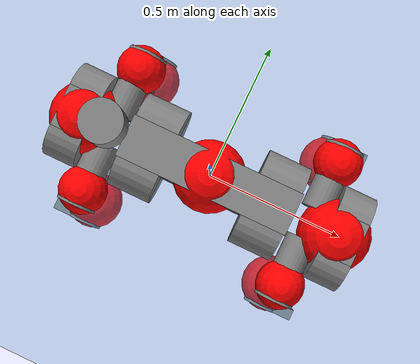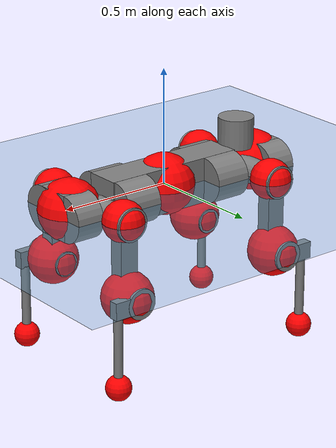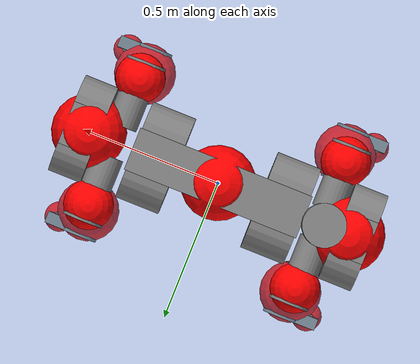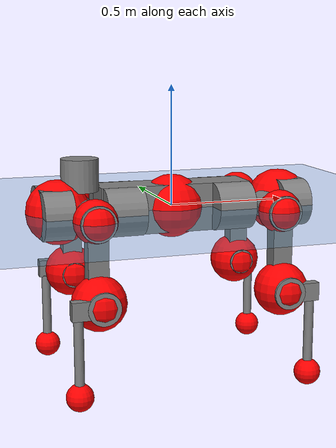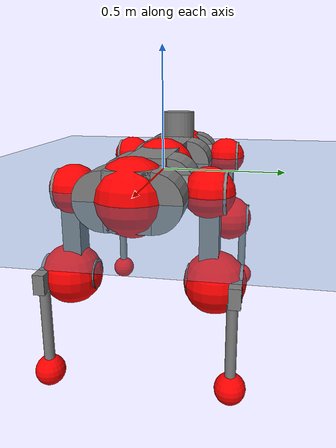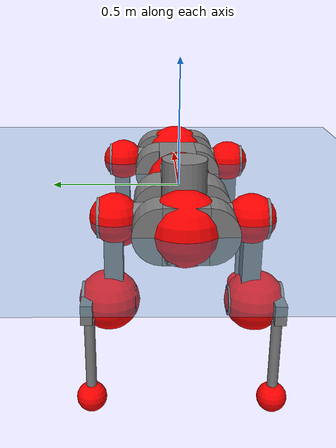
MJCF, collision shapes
<mujoco model="anymal_c">
  <compiler angle="radian" assetdir="assets" balanceinertia="true" inertiafromgeom="false"/>

  <option timestep="0.005" density="1.2" viscosity="2e-05"/>

  <size nkey="1"/>

  <visual>
    <quality shadowsize="8192"/>
    <map shadowclip="0.5"/>
  </visual>

  <default>
    <default class="/">
      <material specular="0" shininess="0.25"/>
      <geom contype="0" conaffinity="0" group="1" solref="-1000 -80"/>
      <site size="0.01 0.005 0.005" group="5"/>
      <general forcelimited="true" forcerange="-80 80" biastype="affine" gainprm="80" biasprm="0 -80 -2"/>
      <default class="anymal_c">
        <joint armature="0.01" damping="0.01" frictionloss="0.1"/>
        <default class="visual">
          <geom type="mesh" group="2"/>
          <default class="visual_zflip"/>
        </default>
        <default class="collision">
          <geom type="cylinder" group="3"/>
          <default class="foot">
            <geom size="0.03 0 0" type="sphere" condim="6" priority="1" friction="0.8 0.02 0.01" solimp="0.015 1 0.03"/>
          </default>
        </default>
      </default>
      <default class="reward_collision_sphere">
        <geom group="5" rgba="1 0 0 1"/>
      </default>
    </default>
  </default>

  <asset>
    <texture type="skybox" colorspace="auto" name="//unnamed_texture_0" builtin="gradient" rgb1="0.95 0.95 0.95" rgb2="0.95 0.95 0.95" width="100" height="600"/>
    <texture type="2d" colorspace="auto" name="texplane" builtin="checker" rgb1="0.345 0.575 0.748" rgb2="0.345 0.575 0.748" markrgb="1 1 1" width="512" height="512"/>
    <texture type="2d" colorspace="linear" name="base" file="base.png"/>
    <texture type="2d" colorspace="linear" name="top_shell" file="top_shell.png"/>
    <texture type="2d" colorspace="linear" name="bottom_shell" file="bottom_shell.png"/>
    <texture type="2d" colorspace="linear" name="remote" file="remote.png"/>
    <texture type="2d" colorspace="linear" name="hatch" file="hatch.png"/>
    <texture type="2d" colorspace="linear" name="handle" file="handle.png"/>
    <texture type="2d" colorspace="linear" name="face" file="face.png"/>
    <texture type="2d" colorspace="linear" name="battery" file="battery.png"/>
    <texture type="2d" colorspace="linear" name="lidar_cage" file="lidar_cage.png"/>
    <texture type="2d" colorspace="linear" name="depth_camera" file="depth_camera.png"/>
    <texture type="2d" colorspace="linear" name="wide_angle_camera" file="wide_angle_camera.png"/>
    <texture type="2d" colorspace="linear" name="lidar" file="lidar.png"/>
    <texture type="2d" colorspace="linear" name="drive" file="drive.png"/>
    <texture type="2d" colorspace="linear" name="hip_l" file="hip_l.png"/>
    <texture type="2d" colorspace="linear" name="shank_l" file="shank_l.png"/>
    <texture type="2d" colorspace="linear" name="foot" file="foot.png"/>
    <texture type="2d" colorspace="linear" name="thigh" file="thigh.png"/>
    <texture type="2d" colorspace="linear" name="shank_r" file="shank_r.png"/>
    <texture type="2d" colorspace="linear" name="hip_r" file="hip_r.png"/>
    <material name="MatPlane" class="/" texture="texplane" texuniform="true" texrepeat="2 2" specular="0.9" shininess="0.5"/>
    <material name="black_plastic" class="/" rgba="0.007 0.007 0.007 1"/>
    <material name="green" class="/" rgba="0.052 0.178 0.033 1"/>
    <material name="red" class="/" rgba="0.178 0.006 0.005 1"/>
    <material name="yellow" class="/" rgba="0.178 0.119 0.006 1"/>
    <material name="lwl" class="/" rgba="0.8 0.8 0.8 1"/>
    <material name="base" class="/" texture="base"/>
    <material name="top_shell" class="/" texture="top_shell"/>
    <material name="bottom_shell" class="/" texture="bottom_shell"/>
    <material name="hip_l" class="/" texture="hip_l"/>
    <material name="thigh" class="/" texture="thigh"/>
    <material name="shank_l" class="/" texture="shank_l"/>
    <material name="foot" class="/" texture="foot"/>
    <material name="hip_r" class="/" texture="hip_r"/>
    <material name="shank" class="/" texture="shank_r"/>
    <material name="hatch" class="/" texture="hatch"/>
    <material name="remote" class="/" texture="remote"/>
    <material name="handle" class="/" texture="handle"/>
    <material name="face" class="/" texture="face"/>
    <material name="depth_camera" class="/" texture="depth_camera"/>
    <material name="wide_angle_camera" class="/" texture="wide_angle_camera"/>
    <material name="battery" class="/" texture="battery"/>
    <material name="lidar_cage" class="/" texture="lidar_cage"/>
    <material name="lidar" class="/" texture="lidar"/>
    <material name="drive" class="/" texture="drive"/>
    <mesh name="base_0" class="/" file="base_0.obj"/>
    <mesh name="base_1" class="/" file="base_1.obj"/>
    <mesh name="base_2" class="/" file="base_2.obj"/>
    <mesh name="base_3" class="/" file="base_3.obj"/>
    <mesh name="base_4" class="/" file="base_4.obj"/>
    <mesh name="base_5" class="/" file="base_5.obj"/>
    <mesh name="top_shell" class="/" file="top_shell.obj"/>
    <mesh name="bottom_shell" class="/" file="bottom_shell.obj"/>
    <mesh name="remote" class="/" file="remote.obj"/>
    <mesh name="handle" class="/" file="handle.obj"/>
    <mesh name="face" class="/" file="face.obj"/>
    <mesh name="wide_angle_camera" class="/" file="wide_angle_camera.obj"/>
    <mesh name="depth_camera" class="/" file="depth_camera.obj"/>
    <mesh name="battery" class="/" file="battery.obj"/>
    <mesh name="lidar_cage" class="/" file="lidar_cage.obj"/>
    <mesh name="lidar" class="/" file="lidar.obj"/>
    <mesh name="drive" class="/" file="drive.obj"/>
    <mesh name="hip_l" class="/" file="hip_l.obj"/>
    <mesh name="thigh" class="/" file="thigh.obj"/>
    <mesh name="shank_l" class="/" file="shank_l.obj"/>
    <mesh name="foot" class="/" file="foot.obj"/>
    <mesh name="hip_r" class="/" file="hip_r.obj"/>
    <mesh name="hatch" class="/" file="hatch.obj"/>
    <mesh name="shank_r" class="/" file="shank_r.obj"/>
  </asset>

  <worldbody>
    <geom name="floor" class="/" size="100 100 0.125" type="plane" group="0" material="MatPlane"/>
    <light name="toplight_shadow" class="/" pos="0 0 5" dir="0.0990148 0.0990148 -0.990148" type="directional" ambient="0.04 0.04 0.04" diffuse="0.55 0.55 0.55" specular="0.12 0.12 0.12"/>
    <light name="toplight_fill" class="/" pos="0 0 5" dir="0.0990148 0.0990148 -0.990148" type="directional" castshadow="false" ambient="0.04 0.04 0.04" diffuse="0.3 0.3 0.3" specular="0.08 0.08 0.08"/>
    <body name="trunk" childclass="anymal_c" pos="-0.000514927 -0.00236943 -0.000964257" quat="1 3.153e-06 -6.32407e-05 1.56965e-05">
      <inertial pos="0.0037207 -0.00206683 0.0544597" quat="0.499688 0.500515 0.50017 0.499626" mass="24.7412" diaginertia="0.872628 1.02873 0.358713"/>
      <joint name="//unnamed_joint_0" type="free" armature="0" damping="0" frictionloss="0"/>
      <geom name="//unnamed_geom_1" class="visual" material="green" mesh="base_0"/>
      <geom name="//unnamed_geom_2" class="visual" material="yellow" mesh="base_1"/>
      <geom name="//unnamed_geom_3" class="visual" material="red" mesh="base_2"/>
      <geom name="//unnamed_geom_4" class="visual" material="black_plastic" mesh="base_3"/>
      <geom name="//unnamed_geom_5" class="visual" material="lwl" mesh="base_4"/>
      <geom name="//unnamed_geom_6" class="visual" material="base" mesh="base_5"/>
      <geom name="trunk_1" class="collision" size="0.318857 0.0769654 0.0989556" type="box"/>
      <geom name="trunk_2" class="collision" size="0.0989556 0.0797142" pos="0.233317 0.0782809 0" quat="0.707107 0 0.707107 0"/>
      <geom name="trunk_3" class="collision" size="0.0989556 0.0797142" pos="-0.233317 0.0782809 0" quat="0.707107 0 0.707107 0"/>
      <geom name="trunk_4" class="collision" size="0.0989556 0.0797142" pos="0.233317 -0.0782809 0" quat="0.707107 0 0.707107 0"/>
      <geom name="trunk_5" class="collision" size="0.0989556 0.0797142" pos="-0.233317 -0.0782809 0" quat="0.707107 0 0.707107 0"/>
      <geom name="//unnamed_geom_12" class="visual" material="top_shell" mesh="top_shell"/>
      <geom name="//unnamed_geom_13" class="visual" material="bottom_shell" mesh="bottom_shell"/>
      <geom name="//unnamed_geom_14" class="visual" material="remote" mesh="remote"/>
      <geom name="//unnamed_geom_15" class="visual" material="handle" mesh="handle"/>
      <geom name="//unnamed_geom_16" class="visual" pos="0.444643 0 0" quat="1 0 0 0" material="face" mesh="face"/>
      <geom name="trunk_6" class="collision" size="0.0604728 0.0769654 0.0989556" pos="0.503643 0 0" type="box"/>
      <geom name="//unnamed_geom_18" class="collision" size="0.0989556 0.0604728" pos="0.503643 0.0782809 0" quat="0.707107 0 0.707107 0"/>
      <geom name="//unnamed_geom_19" class="collision" size="0.0989556 0.0604728" pos="0.503643 -0.0782809 0" quat="0.707107 0 0.707107 0"/>
      <geom name="//unnamed_geom_20" class="visual" pos="0.495223 0 -0.0326033" quat="0.965926 0 0.258819 0" material="depth_camera" mesh="depth_camera"/>
      <geom name="//unnamed_geom_21" class="visual" pos="0.550306 0 0.0165793" material="wide_angle_camera" mesh="wide_angle_camera"/>
      <geom name="//unnamed_geom_22" class="visual_zflip" pos="-0.444643 0 0" quat="0 0 0 1" material="face" mesh="face"/>
      <geom name="trunk_7" class="collision" size="0.0604728 0.0769654 0.0989556" pos="-0.503643 0 0" quat="0 0 0 1" type="box"/>
      <geom name="//unnamed_geom_24" class="collision" size="0.0989556 0.0604728" pos="-0.503643 -0.0782809 0" quat="0 -0.707107 0 0.707107"/>
      <geom name="//unnamed_geom_25" class="collision" size="0.0989556 0.0604728" pos="-0.503643 0.0782809 0" quat="0 -0.707107 0 0.707107"/>
      <geom name="//unnamed_geom_26" class="visual" pos="-0.495223 0 -0.0326033" quat="0 -0.258819 0 0.965926" material="depth_camera" mesh="depth_camera"/>
      <geom name="//unnamed_geom_27" class="visual_zflip" pos="-0.550306 0 0.0165793" quat="0 0 0 1" material="wide_angle_camera" mesh="wide_angle_camera"/>
      <geom name="//unnamed_geom_28" class="visual" material="battery" mesh="battery"/>
      <geom name="//unnamed_geom_29" class="visual" pos="0 0.0861046 0.0319085" quat="0.683013 -0.183013 0.183013 0.683013" material="depth_camera" mesh="depth_camera"/>
      <geom name="//unnamed_geom_30" class="visual" pos="0 -0.0861046 0.0319085" quat="0.683013 0.183013 0.183013 -0.683013" material="depth_camera" mesh="depth_camera"/>
      <geom name="//unnamed_geom_31" class="visual" pos="-0.390471 0 0.0814012" quat="1 0 0 0" material="lidar_cage" mesh="lidar_cage"/>
      <geom name="trunk_8" class="collision" size="0.0769654 0.0659704" pos="-0.390471 0 0.147851"/>
      <geom name="//unnamed_geom_33" class="visual" pos="-0.390471 1.79058e-05 0.157486" quat="0.707107 0 0 -0.707107" material="lidar" mesh="lidar"/>
      <geom name="//unnamed_geom_34" class="visual" pos="0.321709 0.116299 1.86283e-10" quat="0.258819 0.965926 0 0" material="drive" mesh="drive"/>
      <geom name="//unnamed_geom_35" class="visual" pos="0.321709 -0.116299 -1.86283e-10" quat="0.258819 -0.965926 0 0" material="drive" mesh="drive"/>
      <geom name="//unnamed_geom_36" class="visual" pos="-0.321709 0.116299 -1.86283e-10" quat="0 0 0.965926 -0.258819" material="drive" mesh="drive"/>
      <geom name="//unnamed_geom_37" class="visual" pos="-0.321709 -0.116299 1.86283e-10" quat="0 0 -0.965926 -0.258819" material="drive" mesh="drive"/>
      <geom name="//unnamed_geom_38" class="visual" pos="0.124436 0 0.0808474" quat="1 0 0 0" material="hatch" mesh="hatch"/>
      <geom name="//unnamed_geom_39" class="reward_collision_sphere" size="0.131941"/>
      <geom name="//unnamed_geom_40" class="reward_collision_sphere" size="0.131941" pos="0.482725 0 0"/>
      <geom name="//unnamed_geom_41" class="reward_collision_sphere" size="0.131941" pos="-0.482725 0 0"/>
      <site name="imu" pos="0.279293 0.0234581 0.0393798" size="0.0109951"/>
      <camera name="track" pos="0 -2.2366 0" quat="0.707107 0.707107 0 0" mode="trackcom"/>
      <camera name="ego_camera" pos="0.482725 0 -0.0443" quat="-0.5 -0.5 0.5 0.5"/>
      <body name="LF_HIP" pos="0.324842 0.116532 0.00152153" quat="0.25888 0.965909 -0.000853574 0.000683906">
        <inertial pos="0.0612714 -0.0166688 -0.00639617" quat="-0.127991 0.708026 -0.132289 0.681775" mass="3.60754" diaginertia="0.00831724 0.00834965 0.00544093"/>
        <joint name="LF_HAA" pos="0 0 0" axis="0.999998 0.00205829 -0.000473303" stiffness="0.00467808" range="-0.721966 0.542913" armature="0.0114078" damping="0" frictionloss="0.124974"/>
        <geom name="//unnamed_geom_42" class="visual" pos="0 1.09582e-05 -1.79988e-06" quat="0.258819 -0.965926 0 0" material="hip_l" mesh="hip_l"/>
        <geom name="//unnamed_geom_43" class="visual" pos="0.064256 -0.0784561 -0.0452168" quat="0.183013 -0.683013 0.683013 0.183013" material="drive" mesh="drive"/>
        <geom name="//unnamed_geom_44" class="collision" size="0.0549753 0.0769654" pos="0.064256 -0.0133746 -0.00764728" quat="-0.353553 -0.612372 0.612372 -0.353553"/>
        <body name="LF_THIGH" pos="0.0648568 -0.0811555 -0.0470659" quat="0.182299 -0.683776 0.682319 0.183465">
          <inertial pos="0.035819 0.00286964 -0.272307" quat="0.993503 0.000978532 -0.0827448 0.0781341" mass="4.08017" diaginertia="0.0420038 0.051519 0.00675729"/>
          <joint name="LF_HFE" pos="0 0 0" axis="0.999942 -0.00827831 0.0068613" range="-3.09361 3.16289" armature="0.0121656" damping="0.0120276" frictionloss="0.121986"/>
          <geom name="//unnamed_geom_45" class="visual" pos="-0.000906795 -1.4289e-06 0" quat="0.707107 0 0 -0.707107" material="thigh" mesh="thigh"/>
          <geom name="//unnamed_geom_46" class="collision" size="0.0714679 0.0439802" pos="0.0429089 0 0" quat="0.5 0.5 -0.5 -0.5"/>
          <geom name="//unnamed_geom_47" class="collision" size="0.0412315 0.0329852 0.155376" pos="0.0321816 0 -0.156505" quat="0.707107 0 0 -0.707107" type="box"/>
          <geom name="//unnamed_geom_48" class="visual" pos="0.107594 0 -0.315637" quat="1 0 0 0" material="drive" mesh="drive"/>
          <geom name="//unnamed_geom_49" class="collision" size="0.0549753 0.0769654" pos="0.0325035 0 -0.315637" quat="0.707107 0 0.707107 0"/>
          <geom name="//unnamed_geom_50" class="reward_collision_sphere" size="0.0879605" pos="0.026818 0 0"/>
          <body name="LF_SHANK" pos="0.105669 -0.00123335 -0.318333" quat="0.999999 0.00135087 -7.72311e-05 0.00051102">
            <inertial pos="0.00867025 -0.0682905 -0.0897707" quat="0.993012 -0.115427 -0.00329667 -0.0243666" mass="0.793447" diaginertia="0.0140852 0.0164413 0.00186039"/>
            <joint name="LF_KFE" pos="0 0 0" axis="0.999973 -0.00457156 0.00575571" range="-3.15106 3.14554" armature="0.00946339" damping="0.010402" frictionloss="0.109706"/>
            <geom name="//unnamed_geom_51" class="visual" pos="-0.000295686 -0.00157661 0" quat="0.707107 0 0 -0.707107" material="shank_l" mesh="shank_l"/>
            <geom name="LF_kfe_act" class="collision" size="0.0659704 0.0219901" pos="0.0214544 0 0" quat="0.5 0.5 -0.5 -0.5"/>
            <geom name="//unnamed_geom_53" class="collision" size="0.0632205 0.0371083 0.0208906" pos="0.0214544 -0.064301 0" quat="0.5 0.5 -0.5 -0.5" type="box"/>
            <geom name="//unnamed_geom_54" class="visual" pos="0.0139991 -0.0988624 -0.374301" quat="0.382683 0 0 -0.92388" material="foot" mesh="foot"/>
            <geom name="LF_calf" class="collision" size="0.0192414 0.155307" pos="0.013999 -0.0983543 -0.187151" quat="0.707107 0 0 -0.707107"/>
            <geom name="LF_foot" class="foot" size="0.0303155" pos="0.013999 -0.0983543 -0.349383" quat="0.707107 0 0 -0.707107"/>
            <geom name="//unnamed_geom_57" class="reward_collision_sphere" size="0.109951" pos="-0.0536361 0 0"/>
            <geom name="//unnamed_geom_58" class="reward_collision_sphere" size="0.0549753" pos="0.013999 -0.0983543 -0.349383"/>
            <site name="LF_foot" class="foot" pos="0.013999 -0.0983543 -0.349383" quat="0.707107 0 0 -0.707107" size="0.0109951"/>
          </body>
        </body>
      </body>
      <body name="RF_HIP" pos="0.321057 -0.118482 -0.00243742" quat="0.259011 -0.965874 0.000389586 0.000557085">
        <inertial pos="0.0589017 0.0183268 -0.00844643" quat="0.132224 0.677158 0.130942 0.711919" mass="3.57169" diaginertia="0.00805195 0.00851531 0.00556539"/>
        <joint name="RF_HAA" pos="0 0 0" axis="0.999884 -0.00672329 -0.0136889" range="-0.501635 0.726987" armature="0.0118178" damping="0.0185762" frictionloss="0.120852"/>
        <geom name="//unnamed_geom_59" class="visual" pos="0 -1.09581e-05 -1.79987e-06" quat="0.258819 0.965926 0 0" material="hip_r" mesh="hip_r"/>
        <geom name="//unnamed_geom_60" class="visual" pos="0.064256 0.0784561 -0.0452168" quat="0.183013 0.683013 0.683013 -0.183013" material="drive" mesh="drive"/>
        <geom name="//unnamed_geom_61" class="collision" size="0.0549753 0.0769654" pos="0.064256 0.0133746 -0.00764728" quat="-0.353553 0.612372 0.612372 0.353553"/>
        <body name="RF_THIGH" pos="0.065517 0.0807531 -0.04351" quat="0.182752 0.684047 0.681846 -0.183759">
          <inertial pos="0.0304484 -0.000193409 -0.270982" quat="0.993463 0.00699943 -0.0795327 0.0815869" mass="4.324" diaginertia="0.0435144 0.0536234 0.00694979"/>
          <joint name="RF_HFE" pos="0 0 0" axis="0.999977 -0.00553207 -0.00382155" range="-3.16236 3.13464" armature="0.0105585" damping="0.0169008" frictionloss="0.109209"/>
          <geom name="//unnamed_geom_62" class="visual" pos="-0.000906795 -1.4289e-06 0" quat="0.707107 0 0 -0.707107" material="thigh" mesh="thigh"/>
          <geom name="//unnamed_geom_63" class="collision" size="0.0714679 0.0439802" pos="0.0429089 0 0" quat="0.5 0.5 0.5 0.5"/>
          <geom name="//unnamed_geom_64" class="collision" size="0.0412315 0.0329852 0.155376" pos="0.0321816 0 -0.156505" quat="0.707107 0 0 0.707107" type="box"/>
          <geom name="//unnamed_geom_65" class="visual" pos="0.107594 0 -0.315637" quat="1 0 0 0" material="drive" mesh="drive"/>
          <geom name="//unnamed_geom_66" class="collision" size="0.0549753 0.0769654" pos="0.0325035 0 -0.315637" quat="0.707107 0 0.707107 0"/>
          <geom name="//unnamed_geom_67" class="reward_collision_sphere" size="0.0879605" pos="0.026818 0 0"/>
          <body name="RF_SHANK" pos="0.106331 -0.00074804 -0.31827" quat="1 -0.000171602 0.000116487 -0.000913978">
            <inertial pos="0.00836349 0.0689866 -0.0864775" quat="0.991351 0.128517 0.00500046 0.0261236" mass="0.774518" diaginertia="0.0145962 0.0162605 0.00190982"/>
            <joint name="RF_KFE" pos="0 0 0" axis="0.999992 0.00310032 -0.0023896" range="-3.12761 3.14692" armature="0.011562" damping="0.0153898" frictionloss="0.0996602"/>
            <geom name="//unnamed_geom_68" class="visual" pos="-0.000295684 0.00157661 0" quat="0.707107 0 0 0.707107" material="shank" mesh="shank_r"/>
            <geom name="RF_kfe_act" class="collision" size="0.0659704 0.0219901" pos="0.0214544 0 0" quat="0.5 0.5 0.5 0.5"/>
            <geom name="//unnamed_geom_70" class="collision" size="0.0632205 0.0371083 0.0208906" pos="0.0214544 0.064301 0" quat="0.5 0.5 0.5 0.5" type="box"/>
            <geom name="//unnamed_geom_71" class="visual" pos="0.0139989 0.0988624 -0.374301" quat="0.382683 0 0 0.92388" material="foot" mesh="foot"/>
            <geom name="RF_calf" class="collision" size="0.0192414 0.155307" pos="0.013999 0.0983543 -0.187151" quat="0.707107 0 0 0.707107"/>
            <geom name="RF_foot" class="foot" size="0.0256551" pos="0.013999 0.0983543 -0.349383" quat="0.707107 0 0 0.707107"/>
            <geom name="//unnamed_geom_74" class="reward_collision_sphere" size="0.109951" pos="-0.0536361 0 0"/>
            <geom name="//unnamed_geom_75" class="reward_collision_sphere" size="0.0549753" pos="0.013999 0.0983543 -0.349383"/>
            <site name="RF_foot" class="foot" pos="0.013999 0.0983543 -0.349383" quat="0.707107 0 0 0.707107" size="0.0109951"/>
          </body>
        </body>
      </body>
      <body name="LH_HIP" pos="-0.321222 0.116881 0.00254173" quat="0.00123964 7.53595e-05 0.965836 -0.259149">
        <inertial pos="0.0612594 0.0148967 -0.00645093" quat="0.136208 0.681698 0.133596 0.706319" mass="3.87733" diaginertia="0.00860987 0.00888179 0.0056149"/>
        <joint name="LH_HAA" pos="0 0 0" axis="0.999996 0.00222727 -0.00183114" range="-0.484181 0.676359" armature="0.0111151" damping="0.00258021" frictionloss="0.111576"/>
        <geom name="//unnamed_geom_76" class="visual" pos="0 -1.09581e-05 -1.79987e-06" quat="-0.258819 -0.965926 0 0" material="hip_r" mesh="hip_r"/>
        <geom name="//unnamed_geom_77" class="visual" pos="0.064256 0.0784561 -0.0452168" quat="0.183013 0.683013 0.683013 -0.183013" material="drive" mesh="drive"/>
        <geom name="//unnamed_geom_78" class="collision" size="0.0549753 0.0769654" pos="0.064256 0.0133746 -0.00764728" quat="-0.353553 0.612372 0.612372 0.353553"/>
        <body name="LH_THIGH" pos="0.0608849 0.0834892 -0.0463384" quat="0.18257 0.682857 0.683182 -0.183404">
          <inertial pos="0.0335576 0.000699333 -0.272856" quat="0.993236 -0.0117854 -0.0858049 0.0773378" mass="4.18899" diaginertia="0.0434673 0.0553031 0.00724242"/>
          <joint name="LH_HFE" pos="0 0 0" axis="0.999999 0.000615597 -0.00117965" stiffness="0.00300202" range="-3.1888 3.19619" armature="0.00986405" damping="0" frictionloss="0.115103"/>
          <geom name="//unnamed_geom_79" class="visual" pos="-0.000906795 -1.4289e-06 0" quat="0.707107 0 0 -0.707107" material="thigh" mesh="thigh"/>
          <geom name="//unnamed_geom_80" class="collision" size="0.0714679 0.0439802" pos="0.0429089 0 0" quat="0.5 0.5 -0.5 -0.5"/>
          <geom name="//unnamed_geom_81" class="collision" size="0.0412315 0.0329852 0.155376" pos="0.0321816 0 -0.156505" quat="0.707107 0 0 -0.707107" type="box"/>
          <geom name="//unnamed_geom_82" class="visual" pos="0.107594 0 -0.315637" quat="1 0 0 0" material="drive" mesh="drive"/>
          <geom name="//unnamed_geom_83" class="collision" size="0.0549753 0.0769654" pos="0.0325035 0 -0.315637" quat="0.707107 0 0.707107 0"/>
          <geom name="//unnamed_geom_84" class="reward_collision_sphere" size="0.0879605" pos="0.026818 0 0"/>
          <body name="LH_SHANK" pos="0.104911 0.000304623 -0.31388" quat="1 0.000277511 -0.000181686 0.000521926">
            <inertial pos="0.00686314 0.0683097 -0.0889189" quat="0.993446 0.111474 -0.0027958 0.0251326" mass="0.838182" diaginertia="0.0152702 0.0169336 0.00192728"/>
            <joint name="LH_KFE" pos="0 0 0" axis="0.999881 -0.0145323 0.00512648" stiffness="0.00146347" range="-3.13475 3.09168" armature="0.0106726" damping="0" frictionloss="0.110705"/>
            <geom name="//unnamed_geom_85" class="visual" pos="-0.000295684 0.00157661 0" quat="-0.707107 0 0 -0.707107" material="shank" mesh="shank_r"/>
            <geom name="LH_kfe_act" class="collision" size="0.0659704 0.0219901" pos="0.0214544 0 0" quat="0.5 0.5 -0.5 -0.5"/>
            <geom name="//unnamed_geom_87" class="collision" size="0.0632205 0.0371083 0.0208906" pos="0.0214544 0.064301 0" quat="0.5 0.5 -0.5 -0.5" type="box"/>
            <geom name="//unnamed_geom_88" class="visual" pos="0.0139989 0.0988624 -0.374301" quat="-0.382683 0 0 -0.92388" material="foot" mesh="foot"/>
            <geom name="LH_calf" class="collision" size="0.0192414 0.155307" pos="0.013999 0.0983543 -0.187151" quat="0.707107 0 0 -0.707107"/>
            <geom name="LH_foot" class="foot" size="0.0366977" pos="0.013999 0.0983543 -0.349383" quat="0.707107 0 0 -0.707107"/>
            <geom name="//unnamed_geom_91" class="reward_collision_sphere" size="0.109951" pos="-0.0536361 0 0"/>
            <geom name="//unnamed_geom_92" class="reward_collision_sphere" size="0.0549753" pos="0.013999 0.0983543 -0.349383"/>
            <site name="LH_foot" class="foot" pos="0.013999 0.0983543 -0.349383" quat="0.707107 0 0 -0.707107" size="0.0109951"/>
          </body>
        </body>
      </body>
      <body name="RH_HIP" pos="-0.320376 -0.116464 -0.00126956" quat="-0.000704143 0.000590242 -0.965794 -0.259307">
        <inertial pos="0.0619753 -0.0152696 -0.0121089" quat="-0.130492 0.707907 -0.132354 0.681411" mass="3.78397" diaginertia="0.00887833 0.00914669 0.00576081"/>
        <joint name="RH_HAA" pos="0 0 0" axis="0.99997 0.00673658 -0.00378857" stiffness="0.00536426" range="-0.71311 0.466496" armature="0.0111858" damping="0.00937481" frictionloss="0.105397"/>
        <geom name="//unnamed_geom_93" class="visual" pos="0 1.09582e-05 -1.79988e-06" quat="-0.258819 0.965926 0 0" material="hip_l" mesh="hip_l"/>
        <geom name="//unnamed_geom_94" class="visual" pos="0.064256 -0.0784561 -0.0452168" quat="-0.183013 0.683013 -0.683013 -0.183013" material="drive" mesh="drive"/>
        <geom name="//unnamed_geom_95" class="collision" size="0.0549753 0.0769654" pos="0.064256 -0.0133746 -0.00764728" quat="0.353553 0.612372 -0.612372 0.353553"/>
        <body name="RH_THIGH" pos="0.0631204 -0.0788242 -0.0449685" quat="-0.183616 0.683022 -0.682876 -0.182882">
          <inertial pos="0.0329969 -0.00130298 -0.269117" quat="0.993422 -0.00427705 -0.0805705 0.0812534" mass="3.8931" diaginertia="0.0409343 0.0499871 0.00671325"/>
          <joint name="RH_HFE" pos="0 0 0" axis="0.999977 0.00605391 -0.0032052" range="-3.13785 3.20136" armature="0.0115359" damping="0.00726347" frictionloss="0.110431"/>
          <geom name="//unnamed_geom_96" class="visual" pos="-0.000906795 -1.4289e-06 0" quat="0.707107 0 0 -0.707107" material="thigh" mesh="thigh"/>
          <geom name="//unnamed_geom_97" class="collision" size="0.0714679 0.0439802" pos="0.0429089 0 0" quat="0.5 0.5 0.5 0.5"/>
          <geom name="//unnamed_geom_98" class="collision" size="0.0412315 0.0329852 0.155376" pos="0.0321816 0 -0.156505" quat="0.707107 0 0 0.707107" type="box"/>
          <geom name="//unnamed_geom_99" class="visual" pos="0.107594 0 -0.315637" quat="1 0 0 0" material="drive" mesh="drive"/>
          <geom name="//unnamed_geom_100" class="collision" size="0.0549753 0.0769654" pos="0.0325035 0 -0.315637" quat="0.707107 0 0.707107 0"/>
          <geom name="//unnamed_geom_101" class="reward_collision_sphere" size="0.0879605" pos="0.026818 0 0"/>
          <body name="RH_SHANK" pos="0.108396 0.000990501 -0.315386" quat="0.999999 -0.000976748 -0.000920031 -0.000346252">
            <inertial pos="0.00575656 -0.0686519 -0.0908307" quat="0.992668 -0.117631 0.00993304 -0.0259784" mass="0.793077" diaginertia="0.0146924 0.0158757 0.00187677"/>
            <joint name="RH_KFE" pos="0 0 0" axis="0.999985 -0.00533723 0.0011017" range="-3.17378 3.15939" armature="0.0101906" damping="0.00793841" frictionloss="0.110931"/>
            <geom name="//unnamed_geom_102" class="visual" pos="-0.000295686 -0.00157661 0" quat="0.707107 0 0 -0.707107" material="shank_l" mesh="shank_l"/>
            <geom name="RH_kfe_act" class="collision" size="0.0659704 0.0219901" pos="0.0214544 0 0" quat="0.5 0.5 0.5 0.5"/>
            <geom name="//unnamed_geom_104" class="collision" size="0.0632205 0.0371083 0.0208906" pos="0.0214544 -0.064301 0" quat="0.5 0.5 0.5 0.5" type="box"/>
            <geom name="//unnamed_geom_105" class="visual" pos="0.0139991 -0.0988624 -0.374301" quat="0.382683 0 0 -0.92388" material="foot" mesh="foot"/>
            <geom name="RH_calf" class="collision" size="0.0192414 0.155307" pos="0.013999 -0.0983543 -0.187151" quat="0.707107 0 0 0.707107"/>
            <geom name="RH_foot" class="foot" size="0.0279906" pos="0.013999 -0.0983543 -0.349383" quat="0.707107 0 0 0.707107"/>
            <geom name="//unnamed_geom_108" class="reward_collision_sphere" size="0.109951" pos="-0.0536361 0 0"/>
            <geom name="//unnamed_geom_109" class="reward_collision_sphere" size="0.0549753" pos="0.013999 -0.0983543 -0.349383"/>
            <site name="RH_foot" class="foot" pos="0.013999 -0.0983543 -0.349383" quat="0.707107 0 0 0.707107" size="0.0109951"/>
          </body>
        </body>
      </body>
    </body>
  </worldbody>

  <contact>
    <pair class="/" geom1="floor" geom2="LF_foot" name="//unnamed_contact_0"/>
    <pair class="/" geom1="floor" geom2="RF_foot" name="//unnamed_contact_1"/>
    <pair class="/" geom1="floor" geom2="LH_foot" name="//unnamed_contact_2"/>
    <pair class="/" geom1="floor" geom2="RH_foot" name="//unnamed_contact_3"/>
  </contact>

  <actuator>
    <general name="LF_HAA" class="/" joint="LF_HAA" forcerange="-87.5539 87.5539" gainprm="90.9487" biasprm="0 -90.9487 -2.34879"/>
    <general name="LF_HFE" class="/" joint="LF_HFE" forcerange="-78.6621 78.6621" gainprm="90.9487" biasprm="0 -90.9487 -2.34879"/>
    <general name="LF_KFE" class="/" joint="LF_KFE" forcerange="-85.9874 85.9874" gainprm="90.9487" biasprm="0 -90.9487 -2.34879"/>
    <general name="RF_HAA" class="/" joint="RF_HAA" forcerange="-91.7545 91.7545" gainprm="90.9487" biasprm="0 -90.9487 -2.34879"/>
    <general name="RF_HFE" class="/" joint="RF_HFE" forcerange="-92.2739 92.2739" gainprm="90.9487" biasprm="0 -90.9487 -2.34879"/>
    <general name="RF_KFE" class="/" joint="RF_KFE" forcerange="-97.4748 97.4748" gainprm="90.9487" biasprm="0 -90.9487 -2.34879"/>
    <general name="LH_HAA" class="/" joint="LH_HAA" forcerange="-88.3934 88.3934" gainprm="90.9487" biasprm="0 -90.9487 -2.34879"/>
    <general name="LH_HFE" class="/" joint="LH_HFE" forcerange="-89.6624 89.6624" gainprm="90.9487" biasprm="0 -90.9487 -2.34879"/>
    <general name="LH_KFE" class="/" joint="LH_KFE" forcerange="-80.3023 80.3023" gainprm="90.9487" biasprm="0 -90.9487 -2.34879"/>
    <general name="RH_HAA" class="/" joint="RH_HAA" forcerange="-85.9581 85.9581" gainprm="90.9487" biasprm="0 -90.9487 -2.34879"/>
    <general name="RH_HFE" class="/" joint="RH_HFE" forcerange="-89.8848 89.8848" gainprm="90.9487" biasprm="0 -90.9487 -2.34879"/>
    <general name="RH_KFE" class="/" joint="RH_KFE" forcerange="-87.6343 87.6343" gainprm="90.9487" biasprm="0 -90.9487 -2.34879"/>
  </actuator>

  <sensor>
    <gyro site="imu" name="imu_angular_velocity"/>
    <velocimeter site="imu" name="imu_linear_velocity"/>
    <framelinvel objtype="site" objname="LF_foot" name="LF_foot_global_linear_velocity"/>
    <framelinvel objtype="site" objname="RF_foot" name="RF_foot_global_linear_velocity"/>
    <framelinvel objtype="site" objname="LH_foot" name="LH_foot_global_linear_velocity"/>
    <framelinvel objtype="site" objname="RH_foot" name="RH_foot_global_linear_velocity"/>
  </sensor>

  <keyframe>
    <key name="home" qpos="0 0 0.55 1 0 0 0 0 0.4 -0.8 0 -0.4 0.8 0 -0.4 0.8 0 0.4 -0.8"/>
  </keyframe>
</mujoco>
